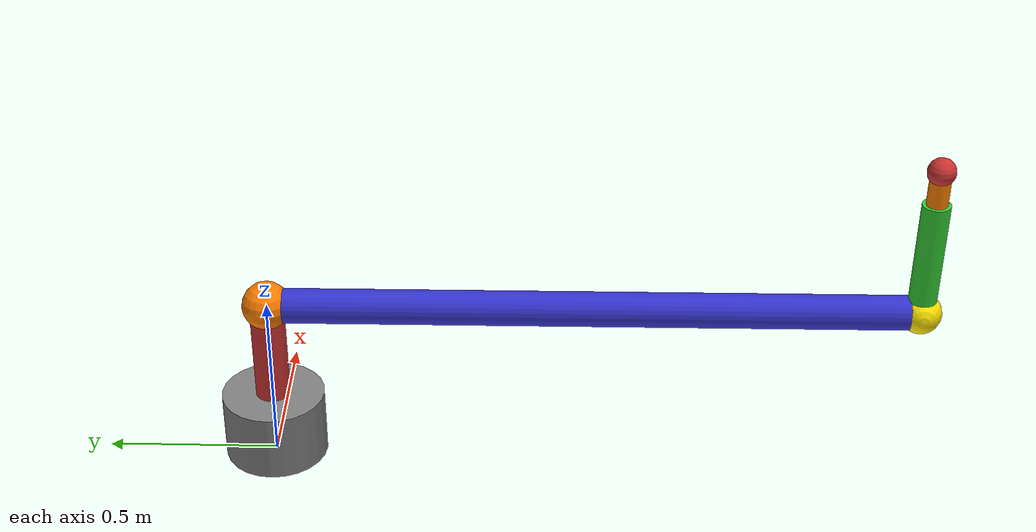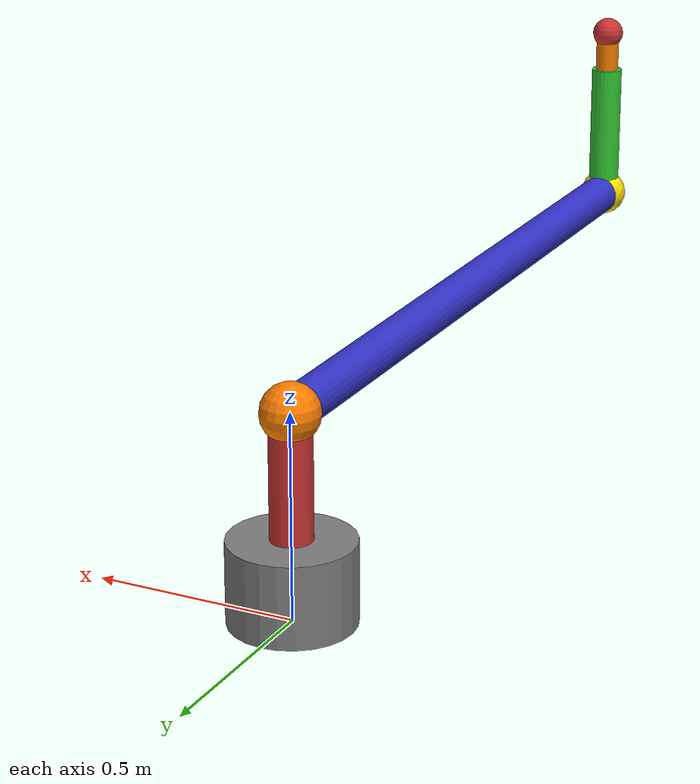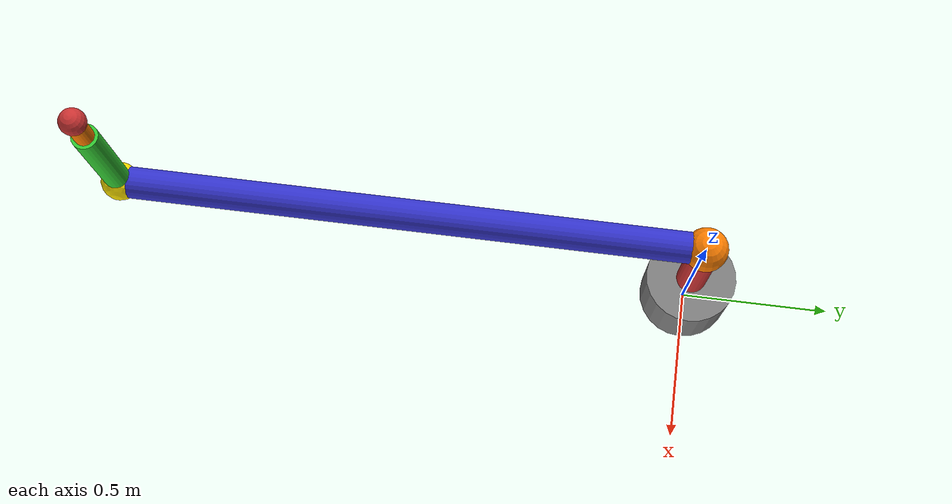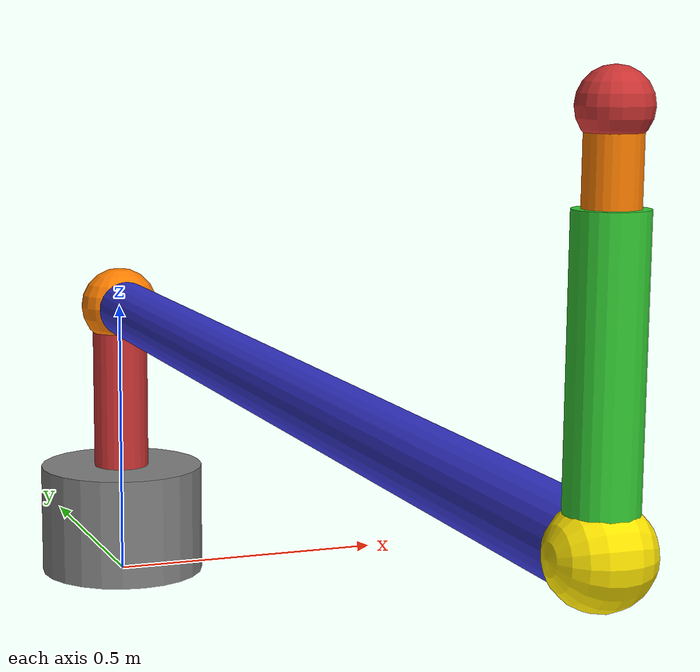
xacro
<?xml version="1.0"?>
<robot name="robot_rci" xmlns:xacro="http://www.ros.org/wiki/xacro">

  <!-- Paramètres géométriques du robot -->
  <xacro:property name="a" value="1.85"/>
  <xacro:property name="b" value="0.35"/>
  <xacro:property name="base_height" value="0.2"/>
  <xacro:property name="base_radius" value="0.15"/>
  <xacro:property name="link_radius" value="0.05"/>

  <!-- Définition des couleurs -->
  <material name="blue">
    <color rgba="0.2 0.2 0.8 1"/>
  </material>

  <material name="red">
    <color rgba="0.8 0.2 0.2 1"/>
  </material>

  <material name="green">
    <color rgba="0.2 0.8 0.2 1"/>
  </material>

  <material name="grey">
    <color rgba="0.5 0.5 0.5 1"/>
  </material>

  <material name="yellow">
    <color rgba="1.0 0.9 0.0 1"/>
  </material>

  <material name="orange">
    <color rgba="1.0 0.5 0.0 1"/>
  </material>

  <!-- Base du robot -->
  <link name="world"/>

  <link name="base_link">
    <visual>
      <origin xyz="0 0 ${base_height/2}" rpy="0 0 0"/>
      <geometry>
        <cylinder radius="${base_radius}" length="${base_height}"/>
      </geometry>
      <material name="grey"/>
    </visual>
  </link>

  <joint name="world_to_base" type="fixed">
    <parent link="world"/>
    <child link="base_link"/>
    <origin xyz="0 0 0" rpy="0 0 0"/>
  </joint>

  <!-- Joint 1 : Rotation autour de Z -->
  <joint name="joint1" type="revolute">
    <parent link="base_link"/>
    <child link="link1_vertical_pole"/>
    <origin xyz="0 0 ${base_height}" rpy="0 0 0"/>
    <axis xyz="0 0 1"/>
    <limit lower="${-110*pi/180}" upper="${110*pi/180}" effort="50.0" velocity="2.0"/>
  </joint>

  <link name="link1_vertical_pole">
    <!-- Barre verticale - ROUGE -->
    <visual>
      <origin xyz="0 0 0.15" rpy="0 0 0"/>
      <geometry>
        <cylinder radius="${link_radius}" length="0.3"/>
      </geometry>
      <material name="red"/>
    </visual>

    <!-- Sphère au sommet de la barre verticale -->
    <visual>
      <origin xyz="0 0 0.3" rpy="0 0 0"/>
      <geometry>
        <sphere radius="0.07"/>
      </geometry>
      <material name="orange"/>
    </visual>

    <!-- Barre horizontale qui part de la base - BLEU -->
    <visual>
      <origin xyz="0 ${-a/2} 0.3" rpy="1.5708 0 0"/>
      <geometry>
        <cylinder radius="${link_radius}" length="${a}"/>
      </geometry>
      <material name="blue"/>
    </visual>
  </link>

  <!-- Joint 2 : Rotation autour de X -->
  <joint name="joint2" type="revolute">
    <parent link="link1_vertical_pole"/>
    <child link="link2_pivot"/>
    <origin xyz="0 ${-a} 0.3" rpy="0 0 0"/>
    <axis xyz="1 0 0"/>
    <limit lower="0" upper="${80*pi/180}" effort="50.0" velocity="2.0"/>
  </joint>

  <link name="link2_pivot">
    <!-- Sphère au point de pivot -->
    <visual>
      <origin xyz="0 0 0" rpy="0 1.5708 0"/>
      <geometry>
        <sphere radius="0.06"/>
      </geometry>
      <material name="yellow"/>
    </visual>
  </link>

  <!-- Joint 3 : Rotation autour de Z -->
  <joint name="joint3" type="revolute">
    <parent link="link2_pivot"/>
    <child link="link3"/>
    <origin xyz="0 0 0" rpy="0 0 0"/>
    <axis xyz="0 0 1"/>
    <limit lower="0" upper="${2*pi}" effort="20.0" velocity="3.0"/>
  </joint>

  <link name="link3">
    <!-- Barre verte fixe -->
    <visual>
      <origin xyz="0 0 ${b/2}" rpy="0 0 0"/>
      <geometry>
        <cylinder radius="${link_radius*0.8}" length="${b}"/>
      </geometry>
      <material name="green"/>
    </visual>
  </link>

  <!-- Joint 4 : Translation le long de Z -->
  <joint name="joint4" type="prismatic">
    <parent link="link3"/>
    <child link="link4"/>
    <origin xyz="0 0 ${b}" rpy="0 0 0"/>
    <axis xyz="0 0 1"/>
    <limit lower="0" upper="0.15" effort="30.0" velocity="0.5"/>
  </joint>

  <link name="link4">
    <!-- Barre télescopique qui se déplace - ORANGE -->
    <visual>
      <origin xyz="0 0 0.05" rpy="0 0 0"/>
      <geometry>
        <cylinder radius="${link_radius*0.6}" length="0.1"/>
      </geometry>
      <material name="orange"/>
    </visual>
  </link>

  <!-- Effecteur final (collé à link4) -->
  <joint name="joint4_to_ee" type="fixed">
    <parent link="link4"/>
    <child link="end_effector"/>
    <origin xyz="0 0 0.1" rpy="0 0 0"/>
  </joint>

  <link name="end_effector">
    <!-- Sphère rouge à l'extrémité -->
    <visual>
      <origin xyz="0 0 0" rpy="0 0 0"/>
      <geometry>
        <sphere radius="0.04"/>
      </geometry>
      <material name="red"/>
    </visual>
  </link>

</robot>
